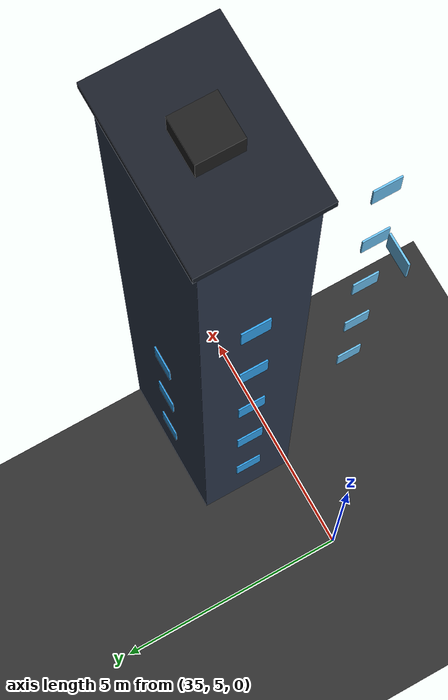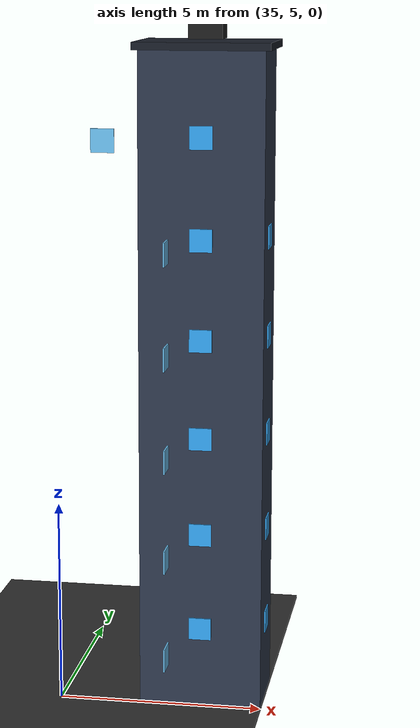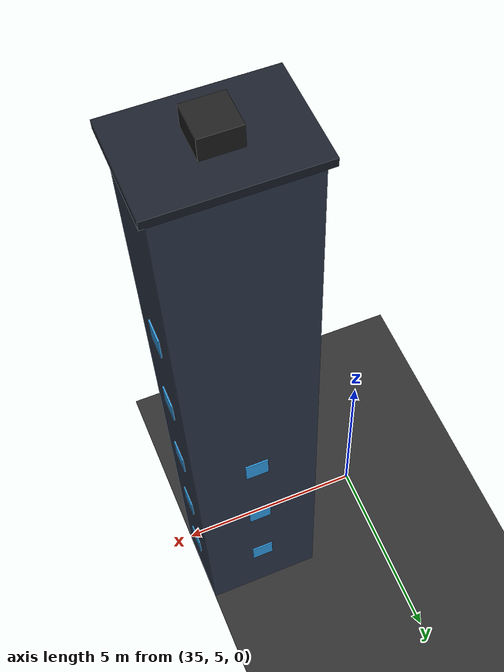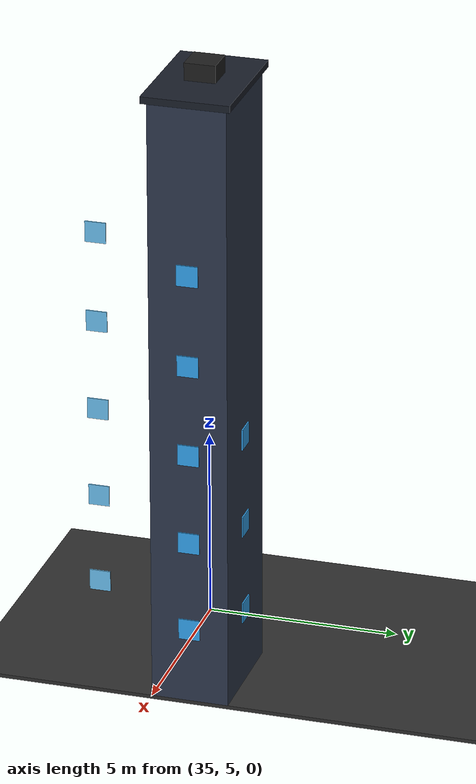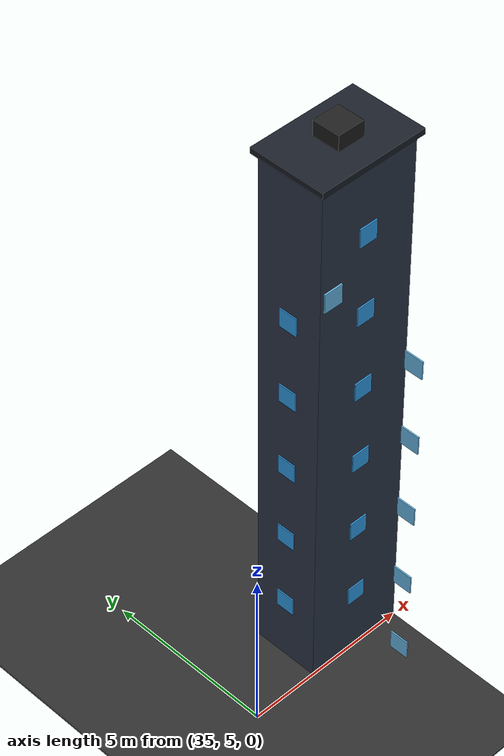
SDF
<sdf version="1.10">
 <world name="city_uav_demo">
  <model name="ground_plane">
   <static>true</static>
   <pose>20.0000 20.0000 -0.0500 0 0 0.0000</pose>
   <link name="link">
    <collision name="collision"><geometry><box><size>40.0000 40.0000 0.1000</size></box></geometry></collision>
    <visual name="visual">
     <geometry><box><size>40.0000 40.0000 0.1000</size></box></geometry>
     <material><ambient>0.18 0.18 0.18 1.0</ambient><diffuse>0.18 0.18 0.18 1.0</diffuse></material>
    </visual>
   </link>
  </model>
  <model name="building_10_window_back_11">
   <static>true</static>
   <pose>36.3750 4.0120 14.0000 0 0 0.0000</pose>
   <link name="link">
    <visual name="visual">
     <geometry><box><size>0.5500 0.0350 0.5500</size></box></geometry>
     <material><ambient>0.42 0.76 0.95 1.0</ambient><diffuse>0.42 0.76 0.95 1.0</diffuse></material>
    </visual>
   </link>
  </model>
  <model name="building_10_window_right_0">
   <static>true</static>
   <pose>38.0120 3.0000 2.0000 0 0 0.0000</pose>
   <link name="link">
    <visual name="visual">
     <geometry><box><size>0.0350 0.5500 0.5500</size></box></geometry>
     <material><ambient>0.42 0.76 0.95 1.0</ambient><diffuse>0.42 0.76 0.95 1.0</diffuse></material>
    </visual>
   </link>
  </model>
  <model name="building_10_window_right_1">
   <static>true</static>
   <pose>38.0120 3.0000 4.4000 0 0 0.0000</pose>
   <link name="link">
    <visual name="visual">
     <geometry><box><size>0.0350 0.5500 0.5500</size></box></geometry>
     <material><ambient>0.42 0.76 0.95 1.0</ambient><diffuse>0.42 0.76 0.95 1.0</diffuse></material>
    </visual>
   </link>
  </model>
  <model name="building_10_window_right_2">
   <static>true</static>
   <pose>38.0120 3.0000 6.8000 0 0 0.0000</pose>
   <link name="link">
    <visual name="visual">
     <geometry><box><size>0.0350 0.5500 0.5500</size></box></geometry>
     <material><ambient>0.42 0.76 0.95 1.0</ambient><diffuse>0.42 0.76 0.95 1.0</diffuse></material>
    </visual>
   </link>
  </model>
  <model name="building_10_window_right_3">
   <static>true</static>
   <pose>38.0120 3.0000 9.2000 0 0 0.0000</pose>
   <link name="link">
    <visual name="visual">
     <geometry><box><size>0.0350 0.5500 0.5500</size></box></geometry>
     <material><ambient>0.42 0.76 0.95 1.0</ambient><diffuse>0.42 0.76 0.95 1.0</diffuse></material>
    </visual>
   </link>
  </model>
  <model name="building_10_window_right_4">
   <static>true</static>
   <pose>38.0120 3.0000 11.6000 0 0 0.0000</pose>
   <link name="link">
    <visual name="visual">
     <geometry><box><size>0.0350 0.5500 0.5500</size></box></geometry>
     <material><ambient>0.42 0.76 0.95 1.0</ambient><diffuse>0.42 0.76 0.95 1.0</diffuse></material>
    </visual>
   </link>
  </model>
  <model name="building_26_body">
   <static>true</static>
   <pose>38.5000 6.0000 8.0000 0 0 0.0000</pose>
   <link name="link">
    <collision name="collision"><geometry><box><size>3.0000 2.0000 16.0000</size></box></geometry></collision>
    <visual name="visual">
     <geometry><box><size>3.0000 2.0000 16.0000</size></box></geometry>
     <material><ambient>0.18 0.22 0.30 1.0</ambient><diffuse>0.18 0.22 0.30 1.0</diffuse></material>
    </visual>
   </link>
  </model>
  <model name="building_26_roof">
   <static>true</static>
   <pose>38.5000 6.0000 16.0900 0 0 0.0000</pose>
   <link name="link">
    <collision name="collision"><geometry><box><size>3.2500 2.2500 0.1800</size></box></geometry></collision>
    <visual name="visual">
     <geometry><box><size>3.2500 2.2500 0.1800</size></box></geometry>
     <material><ambient>0.10 0.12 0.16 1.0</ambient><diffuse>0.10 0.12 0.16 1.0</diffuse></material>
    </visual>
   </link>
  </model>
  <model name="building_26_roof_equipment">
   <static>true</static>
   <pose>38.5000 6.0000 16.4500 0 0 0.0000</pose>
   <link name="link">
    <visual name="visual">
     <geometry><box><size>0.8000 0.8000 0.4500</size></box></geometry>
     <material><ambient>0.12 0.12 0.12 1.0</ambient><diffuse>0.12 0.12 0.12 1.0</diffuse></material>
    </visual>
   </link>
  </model>
  <model name="building_26_window_front_0">
   <static>true</static>
   <pose>38.5000 4.9880 2.0000 0 0 0.0000</pose>
   <link name="link">
    <visual name="visual">
     <geometry><box><size>0.5500 0.0350 0.5500</size></box></geometry>
     <material><ambient>0.20 0.65 0.95 1.0</ambient><diffuse>0.20 0.65 0.95 1.0</diffuse></material>
    </visual>
   </link>
  </model>
  <model name="building_26_window_front_1">
   <static>true</static>
   <pose>38.5000 4.9880 4.4000 0 0 0.0000</pose>
   <link name="link">
    <visual name="visual">
     <geometry><box><size>0.5500 0.0350 0.5500</size></box></geometry>
     <material><ambient>0.20 0.65 0.95 1.0</ambient><diffuse>0.20 0.65 0.95 1.0</diffuse></material>
    </visual>
   </link>
  </model>
  <model name="building_26_window_front_2">
   <static>true</static>
   <pose>38.5000 4.9880 6.8000 0 0 0.0000</pose>
   <link name="link">
    <visual name="visual">
     <geometry><box><size>0.5500 0.0350 0.5500</size></box></geometry>
     <material><ambient>0.20 0.65 0.95 1.0</ambient><diffuse>0.20 0.65 0.95 1.0</diffuse></material>
    </visual>
   </link>
  </model>
  <model name="building_26_window_front_3">
   <static>true</static>
   <pose>38.5000 4.9880 9.2000 0 0 0.0000</pose>
   <link name="link">
    <visual name="visual">
     <geometry><box><size>0.5500 0.0350 0.5500</size></box></geometry>
     <material><ambient>0.20 0.65 0.95 1.0</ambient><diffuse>0.20 0.65 0.95 1.0</diffuse></material>
    </visual>
   </link>
  </model>
  <model name="building_26_window_front_4">
   <static>true</static>
   <pose>38.5000 4.9880 11.6000 0 0 0.0000</pose>
   <link name="link">
    <visual name="visual">
     <geometry><box><size>0.5500 0.0350 0.5500</size></box></geometry>
     <material><ambient>0.20 0.65 0.95 1.0</ambient><diffuse>0.20 0.65 0.95 1.0</diffuse></material>
    </visual>
   </link>
  </model>
  <model name="building_26_window_front_5">
   <static>true</static>
   <pose>38.5000 4.9880 14.0000 0 0 0.0000</pose>
   <link name="link">
    <visual name="visual">
     <geometry><box><size>0.5500 0.0350 0.5500</size></box></geometry>
     <material><ambient>0.20 0.65 0.95 1.0</ambient><diffuse>0.20 0.65 0.95 1.0</diffuse></material>
    </visual>
   </link>
  </model>
  <model name="building_26_window_back_0">
   <static>true</static>
   <pose>38.5000 7.0120 2.0000 0 0 0.0000</pose>
   <link name="link">
    <visual name="visual">
     <geometry><box><size>0.5500 0.0350 0.5500</size></box></geometry>
     <material><ambient>0.20 0.65 0.95 1.0</ambient><diffuse>0.20 0.65 0.95 1.0</diffuse></material>
    </visual>
   </link>
  </model>
  <model name="building_26_window_back_1">
   <static>true</static>
   <pose>38.5000 7.0120 4.4000 0 0 0.0000</pose>
   <link name="link">
    <visual name="visual">
     <geometry><box><size>0.5500 0.0350 0.5500</size></box></geometry>
     <material><ambient>0.20 0.65 0.95 1.0</ambient><diffuse>0.20 0.65 0.95 1.0</diffuse></material>
    </visual>
   </link>
  </model>
  <model name="building_26_window_back_2">
   <static>true</static>
   <pose>38.5000 7.0120 6.8000 0 0 0.0000</pose>
   <link name="link">
    <visual name="visual">
     <geometry><box><size>0.5500 0.0350 0.5500</size></box></geometry>
     <material><ambient>0.20 0.65 0.95 1.0</ambient><diffuse>0.20 0.65 0.95 1.0</diffuse></material>
    </visual>
   </link>
  </model>
  <model name="building_26_window_left_0">
   <static>true</static>
   <pose>36.9880 6.0000 2.0000 0 0 0.0000</pose>
   <link name="link">
    <visual name="visual">
     <geometry><box><size>0.0350 0.5500 0.5500</size></box></geometry>
     <material><ambient>0.20 0.65 0.95 1.0</ambient><diffuse>0.20 0.65 0.95 1.0</diffuse></material>
    </visual>
   </link>
  </model>
  <model name="building_26_window_left_1">
   <static>true</static>
   <pose>36.9880 6.0000 4.4000 0 0 0.0000</pose>
   <link name="link">
    <visual name="visual">
     <geometry><box><size>0.0350 0.5500 0.5500</size></box></geometry>
     <material><ambient>0.20 0.65 0.95 1.0</ambient><diffuse>0.20 0.65 0.95 1.0</diffuse></material>
    </visual>
   </link>
  </model>
  <model name="building_26_window_left_2">
   <static>true</static>
   <pose>36.9880 6.0000 6.8000 0 0 0.0000</pose>
   <link name="link">
    <visual name="visual">
     <geometry><box><size>0.0350 0.5500 0.5500</size></box></geometry>
     <material><ambient>0.20 0.65 0.95 1.0</ambient><diffuse>0.20 0.65 0.95 1.0</diffuse></material>
    </visual>
   </link>
  </model>
  <model name="building_26_window_left_3">
   <static>true</static>
   <pose>36.9880 6.0000 9.2000 0 0 0.0000</pose>
   <link name="link">
    <visual name="visual">
     <geometry><box><size>0.0350 0.5500 0.5500</size></box></geometry>
     <material><ambient>0.20 0.65 0.95 1.0</ambient><diffuse>0.20 0.65 0.95 1.0</diffuse></material>
    </visual>
   </link>
  </model>
  <model name="building_26_window_left_4">
   <static>true</static>
   <pose>36.9880 6.0000 11.6000 0 0 0.0000</pose>
   <link name="link">
    <visual name="visual">
     <geometry><box><size>0.0350 0.5500 0.5500</size></box></geometry>
     <material><ambient>0.20 0.65 0.95 1.0</ambient><diffuse>0.20 0.65 0.95 1.0</diffuse></material>
    </visual>
   </link>
  </model>
  <model name="building_26_window_right_0">
   <static>true</static>
   <pose>40.0120 6.0000 2.0000 0 0 0.0000</pose>
   <link name="link">
    <visual name="visual">
     <geometry><box><size>0.0350 0.5500 0.5500</size></box></geometry>
     <material><ambient>0.20 0.65 0.95 1.0</ambient><diffuse>0.20 0.65 0.95 1.0</diffuse></material>
    </visual>
   </link>
  </model>
  <model name="building_26_window_right_1">
   <static>true</static>
   <pose>40.0120 6.0000 4.4000 0 0 0.0000</pose>
   <link name="link">
    <visual name="visual">
     <geometry><box><size>0.0350 0.5500 0.5500</size></box></geometry>
     <material><ambient>0.20 0.65 0.95 1.0</ambient><diffuse>0.20 0.65 0.95 1.0</diffuse></material>
    </visual>
   </link>
  </model>
  <model name="building_26_window_right_2">
   <static>true</static>
   <pose>40.0120 6.0000 6.8000 0 0 0.0000</pose>
   <link name="link">
    <visual name="visual">
     <geometry><box><size>0.0350 0.5500 0.5500</size></box></geometry>
     <material><ambient>0.20 0.65 0.95 1.0</ambient><diffuse>0.20 0.65 0.95 1.0</diffuse></material>
    </visual>
   </link>
  </model>
  <model name="building_26_window_right_3">
   <static>true</static>
   <pose>40.0120 6.0000 9.2000 0 0 0.0000</pose>
   <link name="link">
    <visual name="visual">
     <geometry><box><size>0.0350 0.5500 0.5500</size></box></geometry>
     <material><ambient>0.20 0.65 0.95 1.0</ambient><diffuse>0.20 0.65 0.95 1.0</diffuse></material>
    </visual>
   </link>
  </model>
  <model name="building_26_window_right_4">
   <static>true</static>
   <pose>40.0120 6.0000 11.6000 0 0 0.0000</pose>
   <link name="link">
    <visual name="visual">
     <geometry><box><size>0.0350 0.5500 0.5500</size></box></geometry>
     <material><ambient>0.20 0.65 0.95 1.0</ambient><diffuse>0.20 0.65 0.95 1.0</diffuse></material>
    </visual>
   </link>
  </model>
 </world>
</sdf>
